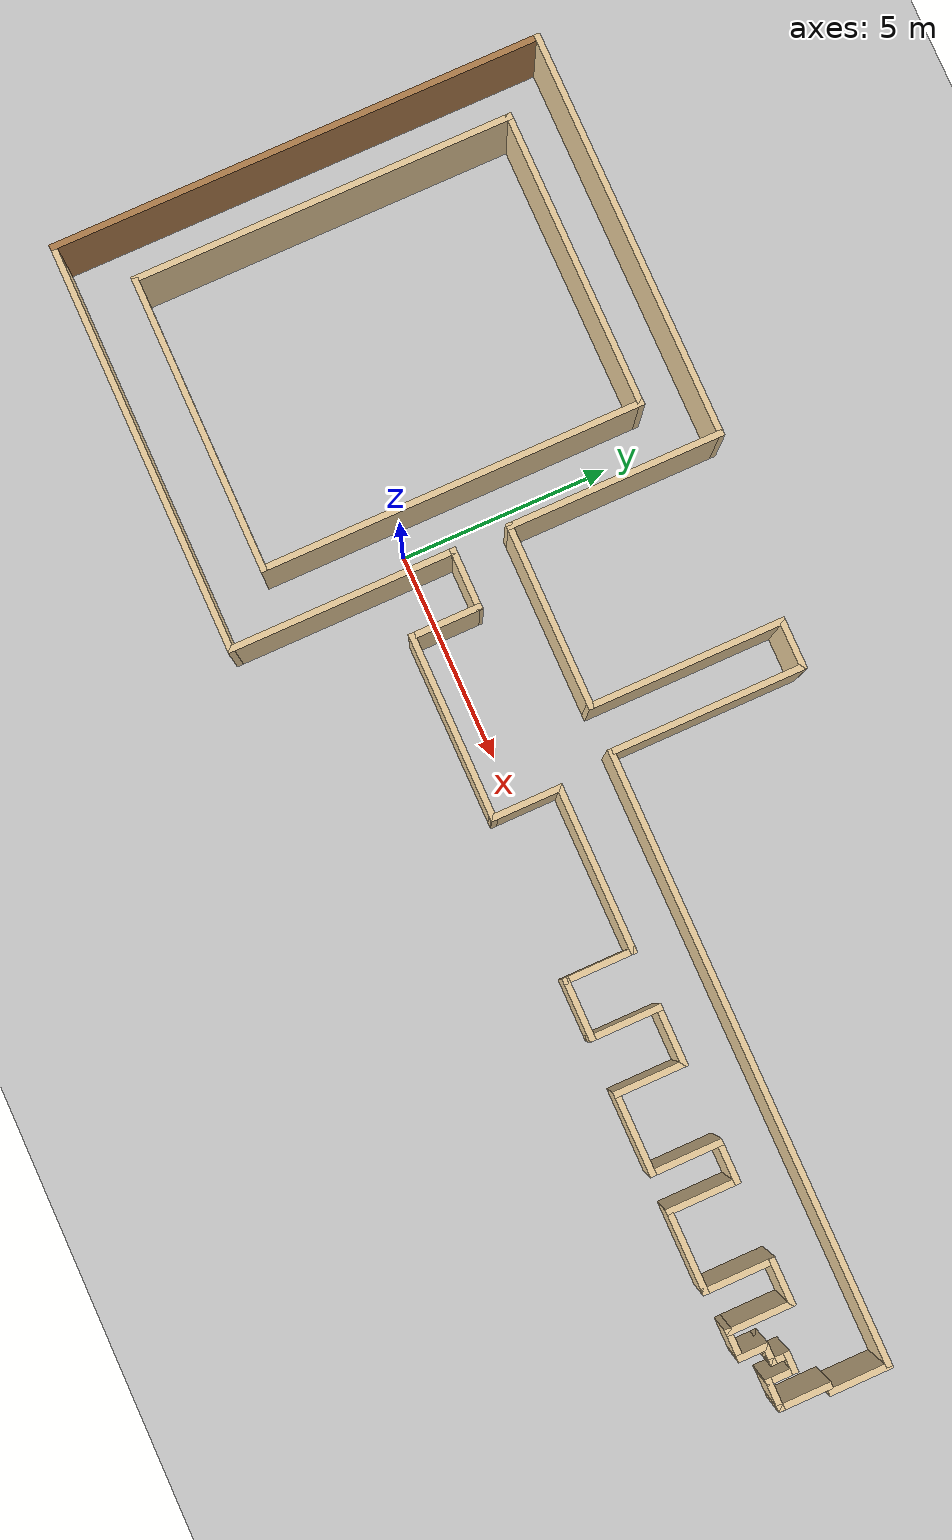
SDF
<sdf version="1.6">
 <world name="default">
  <light name="sun" type="directional">
   <pose>0 0 10 0 -0 0</pose>
   <diffuse>0.8 0.8 0.8 1</diffuse>
   <specular>0.2 0.2 0.2 1</specular>
   <attenuation>
    <range>1000</range>
    <constant>0.9</constant>
    <linear>0.01</linear>
    <quadratic>0.001</quadratic>
   </attenuation>
   <direction>-0.5 0.1 -0.9</direction>
  </light>
  <model name="ground_plane">
   <static>1</static>
   <link name="link">
    <collision name="collision">
     <geometry><plane><normal>0 0 1</normal><size>100 100</size></plane></geometry>
     <surface>
      <contact><collide_bitmask>65535</collide_bitmask></contact>
      <friction><ode><mu>100</mu><mu2>50</mu2></ode></friction>
     </surface>
    </collision>
    <visual name="visual">
     <cast_shadows>0</cast_shadows>
     <geometry><plane><normal>0 0 1</normal><size>100 100</size></plane></geometry>
     <material>
      <script><uri>file://media/materials/scripts/gazebo.material</uri><name>Gazebo/Grey</name></script>
     </material>
    </visual>
   </link>
  </model>
  <gravity>0 0 -9.8</gravity>
  <magnetic_field>6e-06 2.3e-05 -4.2e-05</magnetic_field>
  <atmosphere type="adiabatic"/>
  <physics name="default_physics" default="0" type="ode">
   <max_step_size>0.001</max_step_size>
   <real_time_factor>1</real_time_factor>
   <real_time_update_rate>1000</real_time_update_rate>
  </physics>
  <scene><ambient>0.4 0.4 0.4 1</ambient><background>0.7 0.7 0.7 1</background><shadows>1</shadows></scene>
  <spherical_coordinates>
   <surface_model>EARTH_WGS84</surface_model>
   <latitude_deg>0</latitude_deg>
   <longitude_deg>0</longitude_deg>
   <elevation>0</elevation>
   <heading_deg>0</heading_deg>
  </spherical_coordinates>
  <model name="sieg_hall_low">
   <pose>5.65 1.5 0 0 -0 0</pose>
   <link name="Wall_103">
    <collision name="Wall_103_Collision">
     <geometry><box><size>4.5 0.15 2.5</size></box></geometry>
     <pose>0 0 1.25 0 -0 0</pose>
    </collision>
    <visual name="Wall_103_Visual">
     <pose>0 0 1.25 0 -0 0</pose>
     <geometry><box><size>4.5 0.15 2.5</size></box></geometry>
     <material>
      <script><uri>file://media/materials/scripts/gazebo.material</uri><name>Gazebo/Grey</name></script>
      <ambient>0.921569 0.807843 0.615686 1</ambient>
     </material>
     <meta><layer>0</layer></meta>
    </visual>
    <pose>-2.825 0.800094 0 0 -0 0</pose>
   </link>
   <link name="Wall_105">
    <collision name="Wall_105_Collision">
     <geometry><box><size>14.5 0.15 2.5</size></box></geometry>
     <pose>0 0 1.25 0 -0 0</pose>
    </collision>
    <visual name="Wall_105_Visual">
     <pose>0 0 1.25 0 -0 0</pose>
     <geometry><box><size>14.5 0.15 2.5</size></box></geometry>
     <material>
      <script><uri>file://media/materials/scripts/gazebo.material</uri><name>Gazebo/Grey</name></script>
      <ambient>0.921569 0.807843 0.615686 1</ambient>
     </material>
     <meta><layer>0</layer></meta>
    </visual>
    <pose>7.6251 0.800001 0 0 -0 1.3e-05</pose>
   </link>
   <link name="Wall_110">
    <collision name="Wall_110_Collision">
     <geometry><box><size>4.75 0.15 2.5</size></box></geometry>
     <pose>0 0 1.25 0 -0 0</pose>
    </collision>
    <visual name="Wall_110_Visual">
     <pose>0 0 1.25 0 -0 0</pose>
     <geometry><box><size>4.75 0.15 2.5</size></box></geometry>
     <material>
      <script><uri>file://media/materials/scripts/gazebo.material</uri><name>Gazebo/Grey</name></script>
      <ambient>0.921569 0.807843 0.615686 1</ambient>
     </material>
     <meta><layer>0</layer></meta>
    </visual>
    <pose>-0.65 3.10009 0 0 -0 1.5708</pose>
   </link>
   <link name="Wall_111">
    <collision name="Wall_111_Collision">
     <geometry><box><size>1.25019 0.15 2.5</size></box></geometry>
     <pose>0 0 1.25 0 -0 0</pose>
    </collision>
    <visual name="Wall_111_Visual">
     <pose>0 0 1.25 0 -0 0</pose>
     <geometry><box><size>1.25019 0.15 2.5</size></box></geometry>
     <material>
      <script><uri>file://media/materials/scripts/gazebo.material</uri><name>Gazebo/Grey</name></script>
      <ambient>0.921569 0.807843 0.615686 1</ambient>
     </material>
     <meta><layer>0</layer></meta>
    </visual>
    <pose>-0.099902 5.4 0 0 -0 -0.00017</pose>
   </link>
   <link name="Wall_112">
    <collision name="Wall_112_Collision">
     <geometry><box><size>4.74981 0.15 2.5</size></box></geometry>
     <pose>0 0 1.25 0 -0 0</pose>
    </collision>
    <visual name="Wall_112_Visual">
     <pose>0 0 1.25 0 -0 0</pose>
     <geometry><box><size>4.74981 0.15 2.5</size></box></geometry>
     <material>
      <script><uri>file://media/materials/scripts/gazebo.material</uri><name>Gazebo/Grey</name></script>
      <ambient>0.921569 0.807843 0.615686 1</ambient>
     </material>
     <meta><layer>0</layer></meta>
    </visual>
    <pose>0.450195 3.09991 0 0 -0 -1.5708</pose>
   </link>
   <link name="Wall_17">
    <collision name="Wall_17_Collision">
     <geometry><box><size>11.9498 0.15 2.5</size></box></geometry>
     <pose>0 0 1.25 0 -0 0</pose>
    </collision>
    <visual name="Wall_17_Visual">
     <pose>0 0 1.25 0 -0 0</pose>
     <geometry><box><size>11.9498 0.15 2.5</size></box></geometry>
     <material>
      <script><uri>file://media/materials/scripts/gazebo.material</uri><name>Gazebo/Wood</name></script>
      <ambient>0.921569 0.807843 0.615686 1</ambient>
     </material>
     <meta><layer>0</layer></meta>
    </visual>
    <pose>-14.8498 -9.3e-05 0 0 -0 -1.5708</pose>
   </link>
   <link name="Wall_18">
    <collision name="Wall_18_Collision">
     <geometry><box><size>10 0.15 2.5</size></box></geometry>
     <pose>0 0 1.25 0 -0 0</pose>
    </collision>
    <visual name="Wall_18_Visual">
     <pose>0 0 1.25 0 -0 0</pose>
     <geometry><box><size>10 0.15 2.5</size></box></geometry>
     <material>
      <script><uri>file://media/materials/scripts/gazebo.material</uri><name>Gazebo/Grey</name></script>
      <ambient>0.921569 0.807843 0.615686 1</ambient>
     </material>
     <meta><layer>0</layer></meta>
    </visual>
    <pose>-9.9249 -5.9 0 0 -0 1.9e-05</pose>
   </link>
   <link name="Wall_19">
    <collision name="Wall_19_Collision">
     <geometry><box><size>5.5 0.15 2.5</size></box></geometry>
     <pose>0 0 1.25 0 -0 0</pose>
    </collision>
    <visual name="Wall_19_Visual">
     <pose>0 0 1.25 0 -0 0</pose>
     <geometry><box><size>5.5 0.15 2.5</size></box></geometry>
     <material>
      <script><uri>file://media/materials/scripts/gazebo.material</uri><name>Gazebo/Grey</name></script>
      <ambient>0.921569 0.807843 0.615686 1</ambient>
     </material>
     <meta><layer>0</layer></meta>
    </visual>
    <pose>-5 -3.22491 0 0 -0 1.5708</pose>
   </link>
   <link name="Wall_21">
    <collision name="Wall_21_Collision">
     <geometry><box><size>5.25 0.15 2.5</size></box></geometry>
     <pose>0 0 1.25 0 -0 0</pose>
    </collision>
    <visual name="Wall_21_Visual">
     <pose>0 0 1.25 0 -0 0</pose>
     <geometry><box><size>5.25 0.15 2.5</size></box></geometry>
     <material>
      <script><uri>file://media/materials/scripts/gazebo.material</uri><name>Gazebo/Grey</name></script>
      <ambient>0.921569 0.807843 0.615686 1</ambient>
     </material>
     <meta><layer>0</layer></meta>
    </visual>
    <pose>-5 3.35009 0 0 -0 1.5708</pose>
   </link>
   <link name="Wall_22">
    <collision name="Wall_22_Collision">
     <geometry><box><size>10 0.15 2.5</size></box></geometry>
     <pose>0 0 1.25 0 -0 0</pose>
    </collision>
    <visual name="Wall_22_Visual">
     <pose>0 0 1.25 0 -0 0</pose>
     <geometry><box><size>10 0.15 2.5</size></box></geometry>
     <material>
      <script><uri>file://media/materials/scripts/gazebo.material</uri><name>Gazebo/Grey</name></script>
      <ambient>0.921569 0.807843 0.615686 1</ambient>
     </material>
     <meta><layer>0</layer></meta>
    </visual>
    <pose>-9.925 5.90009 0 0 -0 3.14159</pose>
   </link>
   <link name="Wall_24">
    <collision name="Wall_24_Collision">
     <geometry><box><size>7.25 0.15 2.5</size></box></geometry>
     <pose>0 0 1.25 0 -0 0</pose>
    </collision>
    <visual name="Wall_24_Visual">
     <pose>0 0 1.25 0 -0 0</pose>
     <geometry><box><size>7.25 0.15 2.5</size></box></geometry>
     <material>
      <script><uri>file://media/materials/scripts/gazebo.material</uri><name>Gazebo/Grey</name></script>
      <ambient>0.921569 0.807843 0.615686 1</ambient>
     </material>
     <meta><layer>0</layer></meta>
    </visual>
    <pose>-9.89026 -4.53104 0 0 -0 0</pose>
   </link>
   <link name="Wall_25">
    <collision name="Wall_25_Collision">
     <geometry><box><size>9.25 0.15 2.5</size></box></geometry>
     <pose>0 0 1.25 0 -0 0</pose>
    </collision>
    <visual name="Wall_25_Visual">
     <pose>0 0 1.25 0 -0 0</pose>
     <geometry><box><size>9.25 0.15 2.5</size></box></geometry>
     <material>
      <script><uri>file://media/materials/scripts/gazebo.material</uri><name>Gazebo/Grey</name></script>
      <ambient>0.921569 0.807843 0.615686 1</ambient>
     </material>
     <meta><layer>0</layer></meta>
    </visual>
    <pose>-6.34026 0.018963 0 0 -0 1.5708</pose>
   </link>
   <link name="Wall_26">
    <collision name="Wall_26_Collision">
     <geometry><box><size>7.25 0.15 2.5</size></box></geometry>
     <pose>0 0 1.25 0 -0 0</pose>
    </collision>
    <visual name="Wall_26_Visual">
     <pose>0 0 1.25 0 -0 0</pose>
     <geometry><box><size>7.25 0.15 2.5</size></box></geometry>
     <material>
      <script><uri>file://media/materials/scripts/gazebo.material</uri><name>Gazebo/Grey</name></script>
      <ambient>0.921569 0.807843 0.615686 1</ambient>
     </material>
     <meta><layer>0</layer></meta>
    </visual>
    <pose>-9.89026 4.56896 0 0 -0 3.14159</pose>
   </link>
   <link name="Wall_27">
    <collision name="Wall_27_Collision">
     <geometry><box><size>9.25 0.15 2.5</size></box></geometry>
     <pose>0 0 1.25 0 -0 0</pose>
    </collision>
    <visual name="Wall_27_Visual">
     <pose>0 0 1.25 0 -0 0</pose>
     <geometry><box><size>9.25 0.15 2.5</size></box></geometry>
     <material>
      <script><uri>file://media/materials/scripts/gazebo.material</uri><name>Gazebo/Grey</name></script>
      <ambient>0.921569 0.807843 0.615686 1</ambient>
     </material>
     <meta><layer>0</layer></meta>
    </visual>
    <pose>-13.4403 0.018963 0 0 -0 -1.5708</pose>
   </link>
   <link name="Wall_30">
    <collision name="Wall_30_Collision">
     <geometry><box><size>1.5 0.15 2.5</size></box></geometry>
     <pose>0 0 1.25 0 -0 0</pose>
    </collision>
    <visual name="Wall_30_Visual">
     <pose>0 0 1.25 0 -0 0</pose>
     <geometry><box><size>1.5 0.15 2.5</size></box></geometry>
     <material>
      <script><uri>file://media/materials/scripts/gazebo.material</uri><name>Gazebo/Grey</name></script>
      <ambient>0.921569 0.807843 0.615686 1</ambient>
     </material>
     <meta><layer>0</layer></meta>
    </visual>
    <pose>14.85 0.125094 0 0 -0 -1.5708</pose>
   </link>
   <link name="Wall_41">
    <collision name="Wall_41_Collision">
     <geometry><box><size>1.74354 0.15 2.5</size></box></geometry>
     <pose>0 0 1.25 0 -0 0</pose>
    </collision>
    <visual name="Wall_41_Visual">
     <pose>0 0 1.25 0 -0 0</pose>
     <geometry><box><size>1.74354 0.15 2.5</size></box></geometry>
     <material>
      <script><uri>file://media/materials/scripts/gazebo.material</uri><name>Gazebo/Grey</name></script>
      <ambient>0.921569 0.807843 0.615686 1</ambient>
     </material>
     <meta><layer>0</layer></meta>
    </visual>
    <pose>-3.63781 -1.34709 0 0 -0 -1.5708</pose>
   </link>
   <link name="Wall_42">
    <collision name="Wall_42_Collision">
     <geometry><box><size>4.5 0.15 2.5</size></box></geometry>
     <pose>0 0 1.25 0 -0 0</pose>
    </collision>
    <visual name="Wall_42_Visual">
     <pose>0 0 1.25 0 -0 0</pose>
     <geometry><box><size>4.5 0.15 2.5</size></box></geometry>
     <material>
      <script><uri>file://media/materials/scripts/gazebo.material</uri><name>Gazebo/Grey</name></script>
      <ambient>0.921569 0.807843 0.615686 1</ambient>
     </material>
     <meta><layer>0</layer></meta>
    </visual>
    <pose>-1.4628 -2.14409 0 0 -0 0</pose>
   </link>
   <link name="Wall_43">
    <collision name="Wall_43_Collision">
     <geometry><box><size>1.744 0.15 2.5</size></box></geometry>
     <pose>0 0 1.25 0 -0 0</pose>
    </collision>
    <visual name="Wall_43_Visual">
     <pose>0 0 1.25 0 -0 0</pose>
     <geometry><box><size>1.744 0.15 2.5</size></box></geometry>
     <material>
      <script><uri>file://media/materials/scripts/gazebo.material</uri><name>Gazebo/Grey</name></script>
      <ambient>0.921569 0.807843 0.615686 1</ambient>
     </material>
     <meta><layer>0</layer></meta>
    </visual>
    <pose>0.712195 -1.34709 0 0 -0 1.5708</pose>
   </link>
   <link name="Wall_45">
    <collision name="Wall_45_Collision">
     <geometry><box><size>1.74354 0.15 2.5</size></box></geometry>
     <pose>0 0 1.25 0 -0 0</pose>
    </collision>
    <visual name="Wall_45_Visual">
     <pose>0 0 1.25 0 -0 0</pose>
     <geometry><box><size>1.74354 0.15 2.5</size></box></geometry>
     <material>
      <script><uri>file://media/materials/scripts/gazebo.material</uri><name>Gazebo/Grey</name></script>
      <ambient>0.921569 0.807843 0.615686 1</ambient>
     </material>
     <meta><layer>0</layer></meta>
    </visual>
    <pose>4.5812 -1.34709 0 0 -0 -1.5708</pose>
   </link>
   <link name="Wall_46">
    <collision name="Wall_46_Collision">
     <geometry><box><size>1.5 0.15 2.5</size></box></geometry>
     <pose>0 0 1.25 0 -0 0</pose>
    </collision>
    <visual name="Wall_46_Visual">
     <pose>0 0 1.25 0 -0 0</pose>
     <geometry><box><size>1.5 0.15 2.5</size></box></geometry>
     <material>
      <script><uri>file://media/materials/scripts/gazebo.material</uri><name>Gazebo/Grey</name></script>
      <ambient>0.921569 0.807843 0.615686 1</ambient>
     </material>
     <meta><layer>0</layer></meta>
    </visual>
    <pose>5.2562 -2.14409 0 0 -0 0</pose>
   </link>
   <link name="Wall_47">
    <collision name="Wall_47_Collision">
     <geometry><box><size>1.744 0.15 2.5</size></box></geometry>
     <pose>0 0 1.25 0 -0 0</pose>
    </collision>
    <visual name="Wall_47_Visual">
     <pose>0 0 1.25 0 -0 0</pose>
     <geometry><box><size>1.744 0.15 2.5</size></box></geometry>
     <material>
      <script><uri>file://media/materials/scripts/gazebo.material</uri><name>Gazebo/Grey</name></script>
      <ambient>0.921569 0.807843 0.615686 1</ambient>
     </material>
     <meta><layer>0</layer></meta>
    </visual>
    <pose>5.93119 -1.34709 0 0 -0 1.5708</pose>
   </link>
   <link name="Wall_49">
    <collision name="Wall_49_Collision">
     <geometry><box><size>1.74354 0.15 2.5</size></box></geometry>
     <pose>0 0 1.25 0 -0 0</pose>
    </collision>
    <visual name="Wall_49_Visual">
     <pose>0 0 1.25 0 -0 0</pose>
     <geometry><box><size>1.74354 0.15 2.5</size></box></geometry>
     <material>
      <script><uri>file://media/materials/scripts/gazebo.material</uri><name>Gazebo/Grey</name></script>
      <ambient>0.921569 0.807843 0.615686 1</ambient>
     </material>
     <meta><layer>0</layer></meta>
    </visual>
    <pose>7.2412 -1.34709 0 0 -0 -1.5708</pose>
   </link>
   <link name="Wall_50">
    <collision name="Wall_50_Collision">
     <geometry><box><size>2 0.15 2.5</size></box></geometry>
     <pose>0 0 1.25 0 -0 0</pose>
    </collision>
    <visual name="Wall_50_Visual">
     <pose>0 0 1.25 0 -0 0</pose>
     <geometry><box><size>2 0.15 2.5</size></box></geometry>
     <material>
      <script><uri>file://media/materials/scripts/gazebo.material</uri><name>Gazebo/Grey</name></script>
      <ambient>0.921569 0.807843 0.615686 1</ambient>
     </material>
     <meta><layer>0</layer></meta>
    </visual>
    <pose>8.1662 -2.14409 0 0 -0 0</pose>
   </link>
   <link name="Wall_51">
    <collision name="Wall_51_Collision">
     <geometry><box><size>1.744 0.15 2.5</size></box></geometry>
     <pose>0 0 1.25 0 -0 0</pose>
    </collision>
    <visual name="Wall_51_Visual">
     <pose>0 0 1.25 0 -0 0</pose>
     <geometry><box><size>1.744 0.15 2.5</size></box></geometry>
     <material>
      <script><uri>file://media/materials/scripts/gazebo.material</uri><name>Gazebo/Grey</name></script>
      <ambient>0.921569 0.807843 0.615686 1</ambient>
     </material>
     <meta><layer>0</layer></meta>
    </visual>
    <pose>9.0912 -1.34709 0 0 -0 1.5708</pose>
   </link>
   <link name="Wall_53">
    <collision name="Wall_53_Collision">
     <geometry><box><size>1.74354 0.15 2.5</size></box></geometry>
     <pose>0 0 1.25 0 -0 0</pose>
    </collision>
    <visual name="Wall_53_Visual">
     <pose>0 0 1.25 0 -0 0</pose>
     <geometry><box><size>1.74354 0.15 2.5</size></box></geometry>
     <material>
      <script><uri>file://media/materials/scripts/gazebo.material</uri><name>Gazebo/Grey</name></script>
      <ambient>0.921569 0.807843 0.615686 1</ambient>
     </material>
     <meta><layer>0</layer></meta>
    </visual>
    <pose>9.98119 -1.34709 0 0 -0 -1.5708</pose>
   </link>
   <link name="Wall_54">
    <collision name="Wall_54_Collision">
     <geometry><box><size>2 0.15 2.5</size></box></geometry>
     <pose>0 0 1.25 0 -0 0</pose>
    </collision>
    <visual name="Wall_54_Visual">
     <pose>0 0 1.25 0 -0 0</pose>
     <geometry><box><size>2 0.15 2.5</size></box></geometry>
     <material>
      <script><uri>file://media/materials/scripts/gazebo.material</uri><name>Gazebo/Grey</name></script>
      <ambient>0.921569 0.807843 0.615686 1</ambient>
     </material>
     <meta><layer>0</layer></meta>
    </visual>
    <pose>10.9062 -2.14409 0 0 -0 0</pose>
   </link>
   <link name="Wall_55">
    <collision name="Wall_55_Collision">
     <geometry><box><size>1.744 0.15 2.5</size></box></geometry>
     <pose>0 0 1.25 0 -0 0</pose>
    </collision>
    <visual name="Wall_55_Visual">
     <pose>0 0 1.25 0 -0 0</pose>
     <geometry><box><size>1.744 0.15 2.5</size></box></geometry>
     <material>
      <script><uri>file://media/materials/scripts/gazebo.material</uri><name>Gazebo/Grey</name></script>
      <ambient>0.921569 0.807843 0.615686 1</ambient>
     </material>
     <meta><layer>0</layer></meta>
    </visual>
    <pose>11.8312 -1.34709 0 0 -0 1.5708</pose>
   </link>
   <link name="Wall_78">
    <collision name="Wall_78_Collision">
     <geometry><box><size>1.63753 0.15 2.5</size></box></geometry>
     <pose>0 0 1.25 0 -0 0</pose>
    </collision>
    <visual name="Wall_78_Visual">
     <pose>0 0 1.25 0 -0 0</pose>
     <geometry><box><size>1.63753 0.15 2.5</size></box></geometry>
     <material>
      <script><uri>file://media/materials/scripts/gazebo.material</uri><name>Gazebo/Grey</name></script>
      <ambient>0.921569 0.807843 0.615686 1</ambient>
     </material>
     <meta><layer>0</layer></meta>
    </visual>
    <pose>12.8162 -1.29409 0 0 -0 -1.5708</pose>
   </link>
   <link name="Wall_79">
    <collision name="Wall_79_Collision">
     <geometry><box><size>0.75 0.15 2.5</size></box></geometry>
     <pose>0 0 1.25 0 -0 0</pose>
    </collision>
    <visual name="Wall_79_Visual">
     <pose>0 0 1.25 0 -0 0</pose>
     <geometry><box><size>0.75 0.15 2.5</size></box></geometry>
     <material>
      <script><uri>file://media/materials/scripts/gazebo.material</uri><name>Gazebo/Grey</name></script>
      <ambient>0.921569 0.807843 0.615686 1</ambient>
     </material>
     <meta><layer>0</layer></meta>
    </visual>
    <pose>13.1159 -2.03786 0 0 -0 0.000775</pose>
   </link>
   <link name="Wall_80">
    <collision name="Wall_80_Collision">
     <geometry><box><size>0.75 0.15 2.5</size></box></geometry>
     <pose>0 0 1.25 0 -0 0</pose>
    </collision>
    <visual name="Wall_80_Visual">
     <pose>0 0 1.25 0 -0 0</pose>
     <geometry><box><size>0.75 0.15 2.5</size></box></geometry>
     <material>
      <script><uri>file://media/materials/scripts/gazebo.material</uri><name>Gazebo/Grey</name></script>
      <ambient>0.921569 0.807843 0.615686 1</ambient>
     </material>
     <meta><layer>0</layer></meta>
    </visual>
    <pose>13.4157 -1.73763 0 0 -0 1.5708</pose>
   </link>
   <link name="Wall_81">
    <collision name="Wall_81_Collision">
     <geometry><box><size>0.5 0.15 2.5</size></box></geometry>
     <pose>0 0 1.25 0 -0 0</pose>
    </collision>
    <visual name="Wall_81_Visual">
     <pose>0 0 1.25 0 -0 0</pose>
     <geometry><box><size>0.5 0.15 2.5</size></box></geometry>
     <material>
      <script><uri>file://media/materials/scripts/gazebo.material</uri><name>Gazebo/Grey</name></script>
      <ambient>0.921569 0.807843 0.615686 1</ambient>
     </material>
     <meta><layer>0</layer></meta>
    </visual>
    <pose>13.5907 -1.43763 0 0 -0 0</pose>
   </link>
   <link name="Wall_82">
    <collision name="Wall_82_Collision">
     <geometry><box><size>0.5 0.15 2.5</size></box></geometry>
     <pose>0 0 1.25 0 -0 0</pose>
    </collision>
    <visual name="Wall_82_Visual">
     <pose>0 0 1.25 0 -0 0</pose>
     <geometry><box><size>0.5 0.15 2.5</size></box></geometry>
     <material>
      <script><uri>file://media/materials/scripts/gazebo.material</uri><name>Gazebo/Grey</name></script>
      <ambient>0.921569 0.807843 0.615686 1</ambient>
     </material>
     <meta><layer>0</layer></meta>
    </visual>
    <pose>13.7657 -1.26263 0 0 -0 1.5708</pose>
   </link>
   <link name="Wall_83">
    <collision name="Wall_83_Collision">
     <geometry><box><size>0.5 0.15 2.5</size></box></geometry>
     <pose>0 0 1.25 0 -0 0</pose>
    </collision>
    <visual name="Wall_83_Visual">
     <pose>0 0 1.25 0 -0 0</pose>
     <geometry><box><size>0.5 0.15 2.5</size></box></geometry>
     <material>
      <script><uri>file://media/materials/scripts/gazebo.material</uri><name>Gazebo/Grey</name></script>
      <ambient>0.921569 0.807843 0.615686 1</ambient>
     </material>
     <meta><layer>0</layer></meta>
    </visual>
    <pose>13.9407 -1.08763 0 0 -0 0</pose>
   </link>
   <link name="Wall_84">
    <collision name="Wall_84_Collision">
     <geometry><box><size>0.75 0.15 2.5</size></box></geometry>
     <pose>0 0 1.25 0 -0 0</pose>
    </collision>
    <visual name="Wall_84_Visual">
     <pose>0 0 1.25 0 -0 0</pose>
     <geometry><box><size>0.75 0.15 2.5</size></box></geometry>
     <material>
      <script><uri>file://media/materials/scripts/gazebo.material</uri><name>Gazebo/Grey</name></script>
      <ambient>0.921569 0.807843 0.615686 1</ambient>
     </material>
     <meta><layer>0</layer></meta>
    </visual>
    <pose>14.1157 -1.38763 0 0 -0 -1.5708</pose>
   </link>
   <link name="Wall_85">
    <collision name="Wall_85_Collision">
     <geometry><box><size>0.75 0.15 2.5</size></box></geometry>
     <pose>0 0 1.25 0 -0 0</pose>
    </collision>
    <visual name="Wall_85_Visual">
     <pose>0 0 1.25 0 -0 0</pose>
     <geometry><box><size>0.75 0.15 2.5</size></box></geometry>
     <material>
      <script><uri>file://media/materials/scripts/gazebo.material</uri><name>Gazebo/Grey</name></script>
      <ambient>0.921569 0.807843 0.615686 1</ambient>
     </material>
     <meta><layer>0</layer></meta>
    </visual>
    <pose>14.4159 -1.68786 0 0 -0 -0.000774</pose>
   </link>
   <link name="Wall_88">
    <collision name="Wall_88_Collision">
     <geometry><box><size>1.28356 0.15 2.5</size></box></geometry>
     <pose>0 0 1.25 0 -0 0</pose>
    </collision>
    <visual name="Wall_88_Visual">
     <pose>0 0 1.25 0 -0 0</pose>
     <geometry><box><size>1.28356 0.15 2.5</size></box></geometry>
     <material>
      <script><uri>file://media/materials/scripts/gazebo.material</uri><name>Gazebo/Grey</name></script>
      <ambient>0.921569 0.807843 0.615686 1</ambient>
     </material>
     <meta><layer>0</layer></meta>
    </visual>
    <pose>14.7162 -1.12159 0 0 -0 1.5708</pose>
   </link>
   <link name="Wall_90">
    <collision name="Wall_90_Collision">
     <geometry><box><size>1.51219 0.15 2.5</size></box></geometry>
     <pose>0 0 1.25 0 -0 0</pose>
    </collision>
    <visual name="Wall_90_Visual">
     <pose>0 0 1.25 0 -0 0</pose>
     <geometry><box><size>1.51219 0.15 2.5</size></box></geometry>
     <material>
      <script><uri>file://media/materials/scripts/gazebo.material</uri><name>Gazebo/Grey</name></script>
      <ambient>0.921569 0.807843 0.615686 1</ambient>
     </material>
     <meta><layer>0</layer></meta>
    </visual>
    <pose>-4.3189 -0.549999 0 0 -0 -0.000138</pose>
   </link>
   <link name="Wall_92">
    <collision name="Wall_92_Collision">
     <geometry><box><size>4.019 0.15 2.5</size></box></geometry>
     <pose>0 0 1.25 0 -0 0</pose>
    </collision>
    <visual name="Wall_92_Visual">
     <pose>0 0 1.25 0 -0 0</pose>
     <geometry><box><size>4.019 0.15 2.5</size></box></geometry>
     <material>
      <script><uri>file://media/materials/scripts/gazebo.material</uri><name>Gazebo/Grey</name></script>
      <ambient>0.921569 0.807843 0.615686 1</ambient>
     </material>
     <meta><layer>0</layer></meta>
    </visual>
    <pose>2.64669 -0.550093 0 0 -0 0</pose>
   </link>
   <link name="Wall_95">
    <collision name="Wall_95_Collision">
     <geometry><box><size>1.46 0.15 2.5</size></box></geometry>
     <pose>0 0 1.25 0 -0 0</pose>
    </collision>
    <visual name="Wall_95_Visual">
     <pose>0 0 1.25 0 -0 0</pose>
     <geometry><box><size>1.46 0.15 2.5</size></box></geometry>
     <material>
      <script><uri>file://media/materials/scripts/gazebo.material</uri><name>Gazebo/Grey</name></script>
      <ambient>0.921569 0.807843 0.615686 1</ambient>
     </material>
     <meta><layer>0</layer></meta>
    </visual>
    <pose>6.5862 -0.550093 0 0 -0 0</pose>
   </link>
   <link name="Wall_97">
    <collision name="Wall_97_Collision">
     <geometry><box><size>1.04 0.15 2.5</size></box></geometry>
     <pose>0 0 1.25 0 -0 0</pose>
    </collision>
    <visual name="Wall_97_Visual">
     <pose>0 0 1.25 0 -0 0</pose>
     <geometry><box><size>1.04 0.15 2.5</size></box></geometry>
     <material>
      <script><uri>file://media/materials/scripts/gazebo.material</uri><name>Gazebo/Grey</name></script>
      <ambient>0.921569 0.807843 0.615686 1</ambient>
     </material>
     <meta><layer>0</layer></meta>
    </visual>
    <pose>9.5362 -0.550093 0 0 -0 0</pose>
   </link>
   <link name="Wall_99">
    <collision name="Wall_99_Collision">
     <geometry><box><size>1.135 0.15 2.5</size></box></geometry>
     <pose>0 0 1.25 0 -0 0</pose>
    </collision>
    <visual name="Wall_99_Visual">
     <pose>0 0 1.25 0 -0 0</pose>
     <geometry><box><size>1.135 0.15 2.5</size></box></geometry>
     <material>
      <script><uri>file://media/materials/scripts/gazebo.material</uri><name>Gazebo/Grey</name></script>
      <ambient>0.921569 0.807843 0.615686 1</ambient>
     </material>
     <meta><layer>0</layer></meta>
    </visual>
    <pose>12.3237 -0.550093 0 0 -0 0</pose>
   </link>
   <static>1</static>
  </model>
 </world>
</sdf>
